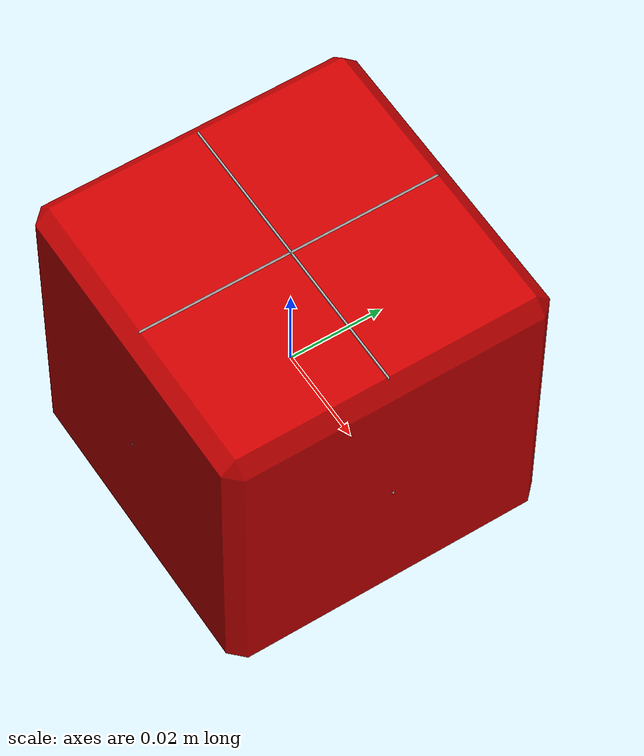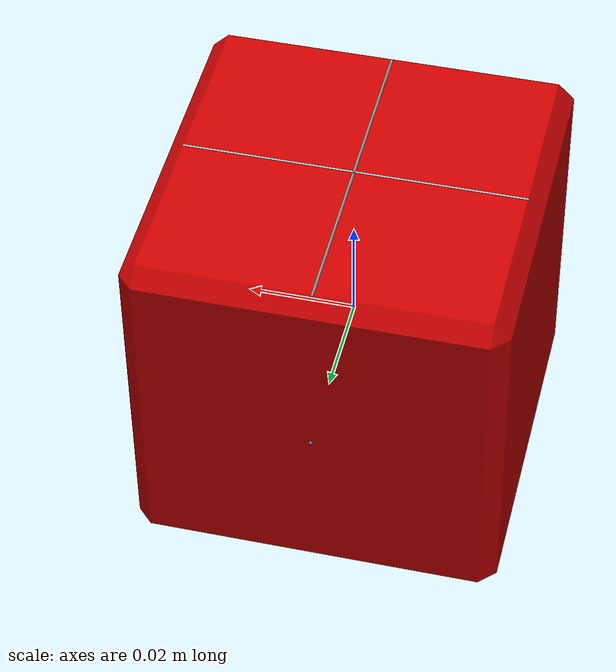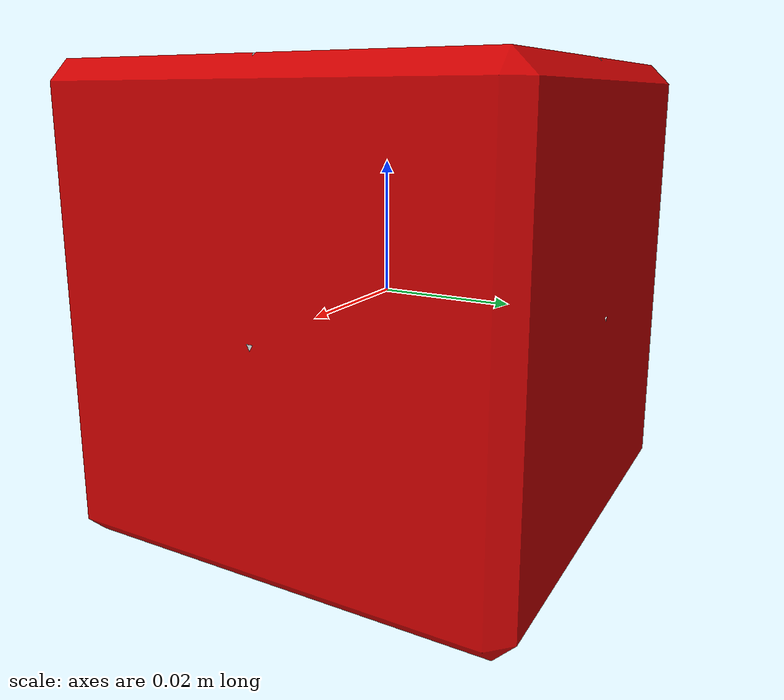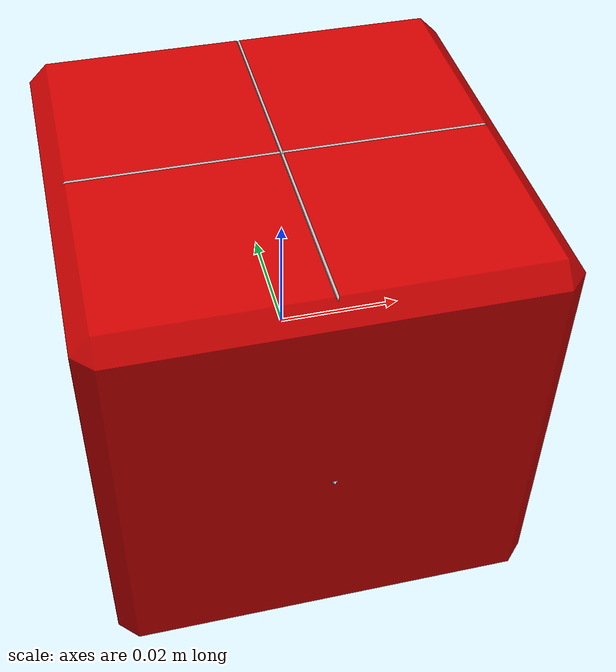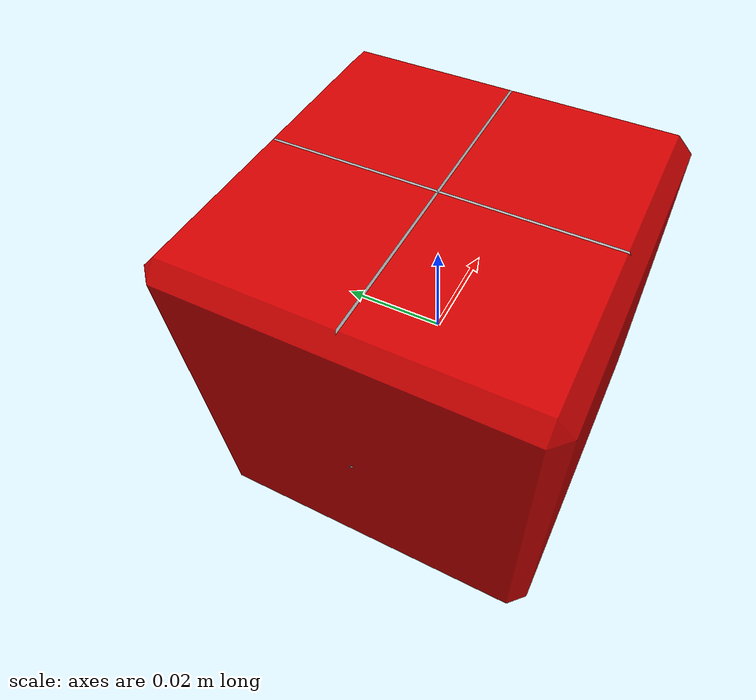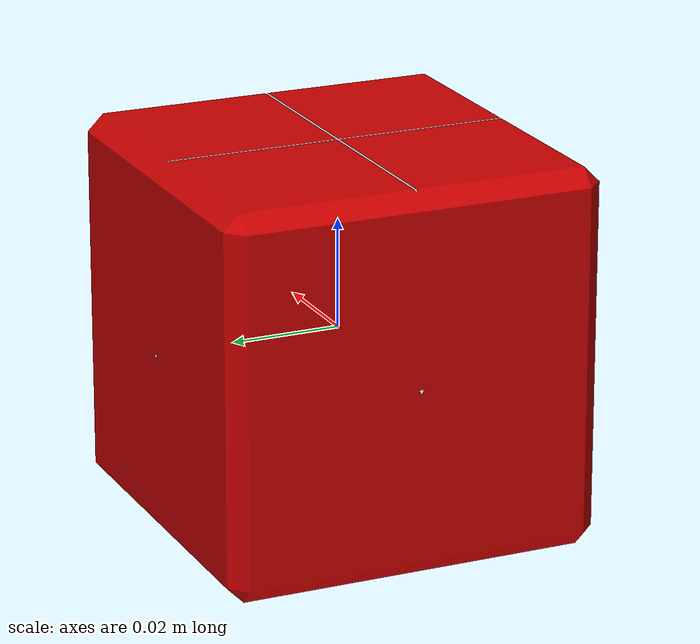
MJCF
<mujoco model="target">
  <compiler meshdir="assets" texturedir="assets" autolimits="true"/>
  <default>
    <default class="visual">
      <geom group="2" type="mesh" contype="0" conaffinity="0"/>
    </default>
    <default class="collision">
      <geom group="3" type="mesh"/>
    </default>
  </default>
  <asset>
    <material name="203,154,59" specular="0.543791" shininess="1.0" rgba="0.796078 0.603922 0.231373 1.000000"/>
    <material name="235,235,235" specular="1.0" shininess="1.0" rgba="0.921569 0.921569 0.921569 1.000000"/>
    <material name="204,0,0" specular="1.0" shininess="1.0" rgba="0.800000 0.000000 0.000000 1.000000"/>
    <material name="235,235,235_1" specular="1.0" shininess="1.0" rgba="0.921569 0.921569 0.921569 1.000000"/>
    <mesh name="object_0" file="object_0.obj" scale="0.001 0.001 0.001"/>
    <mesh name="object_1" file="object_1.obj" scale="0.001 0.001 0.001"/>
    <mesh name="object_2" file="object_2.obj" scale="0.001 0.001 0.001"/>
    <mesh name="object_3" file="object_3.obj" scale="0.001 0.001 0.001"/>
    <mesh name="object_collision_0" file="object_collision_0.obj" scale="0.001 0.001 0.001"/>
  </asset>
  <worldbody>
    <body name="object">
      <geom mesh="object_0" material="235,235,235_1" class="visual"/>
      <geom mesh="object_1" material="204,0,0" class="visual"/>
      <geom mesh="object_2" material="235,235,235" class="visual"/>
      <geom mesh="object_3" material="203,154,59" class="visual"/>
      <geom mesh="object_collision_0" class="collision"/>
    </body>
  </worldbody>
</mujoco>
